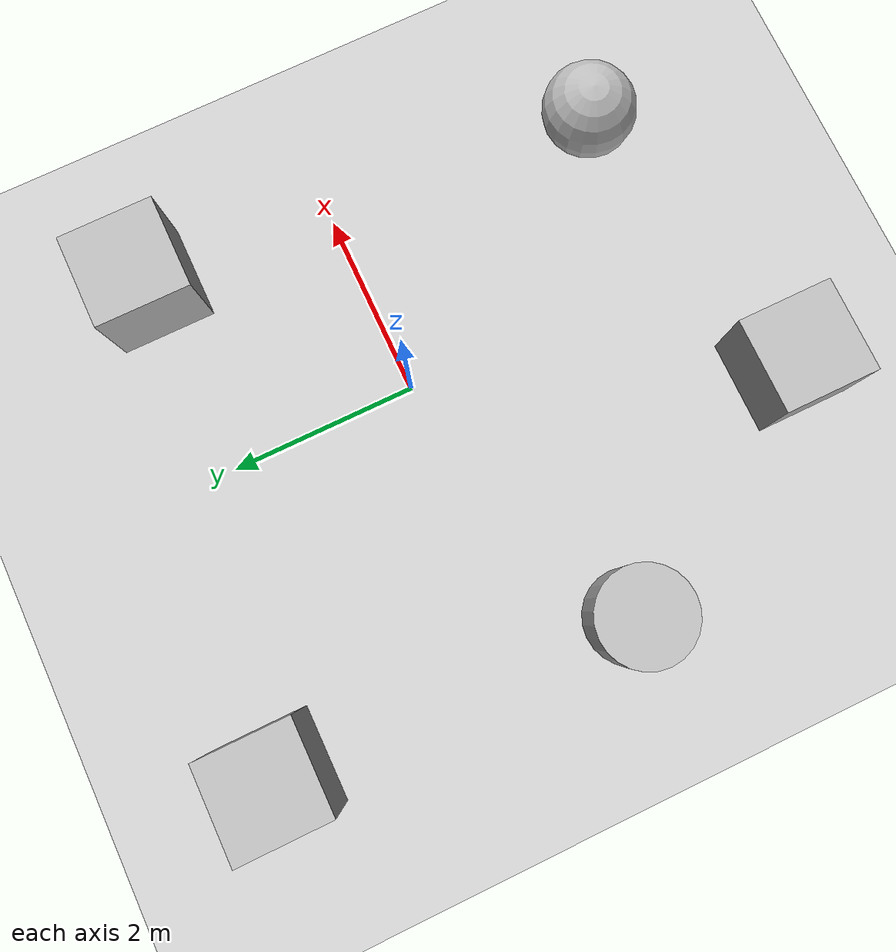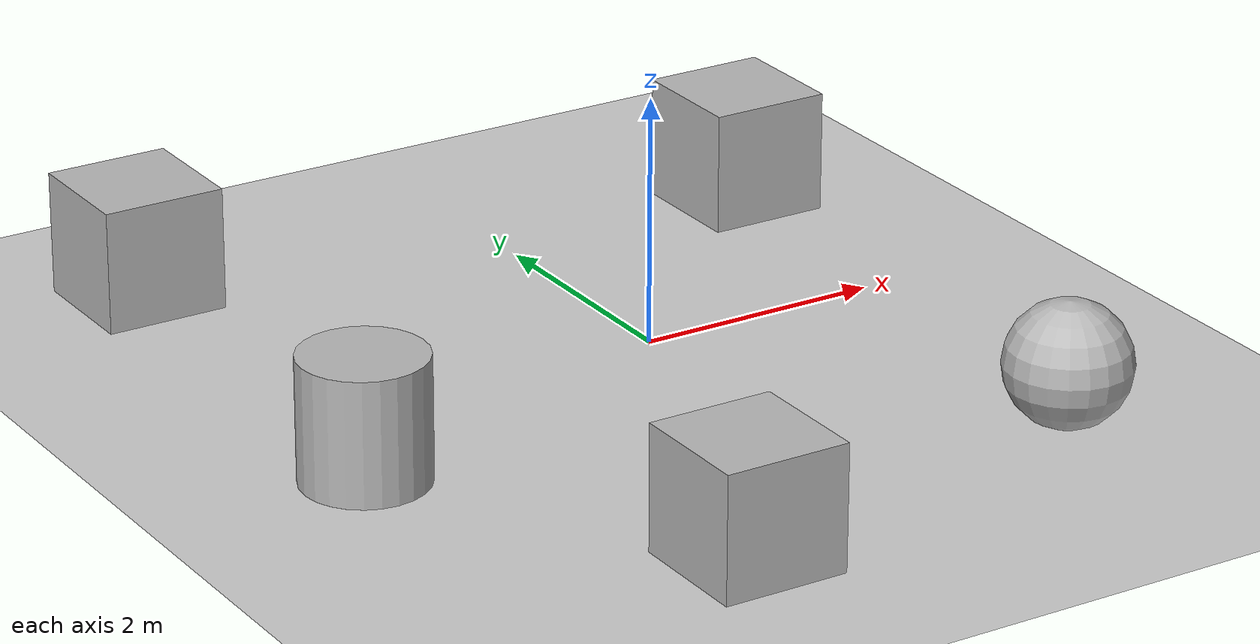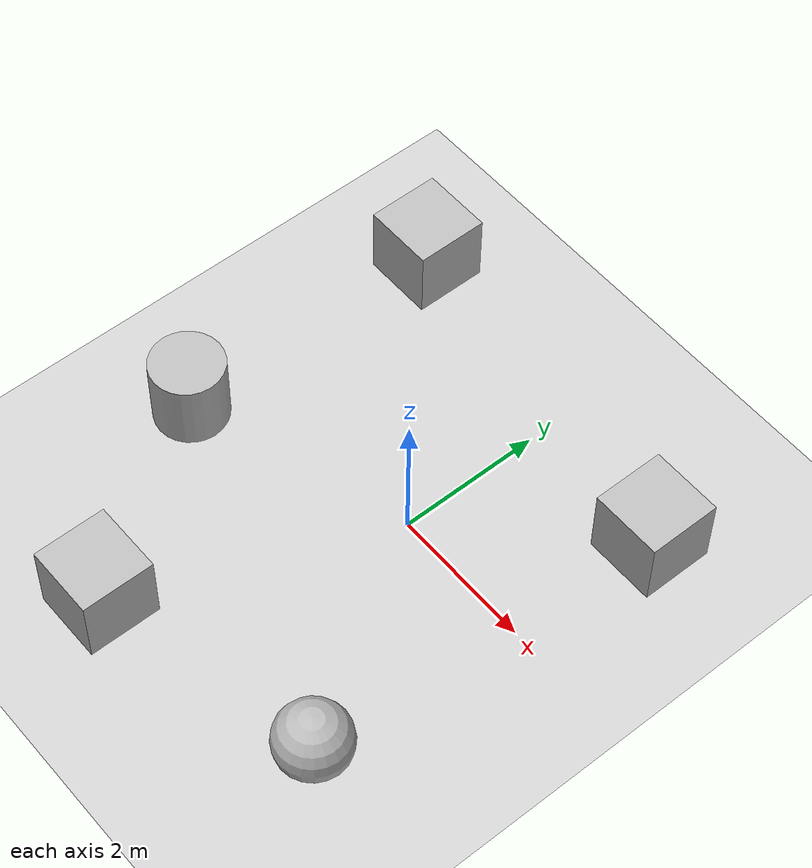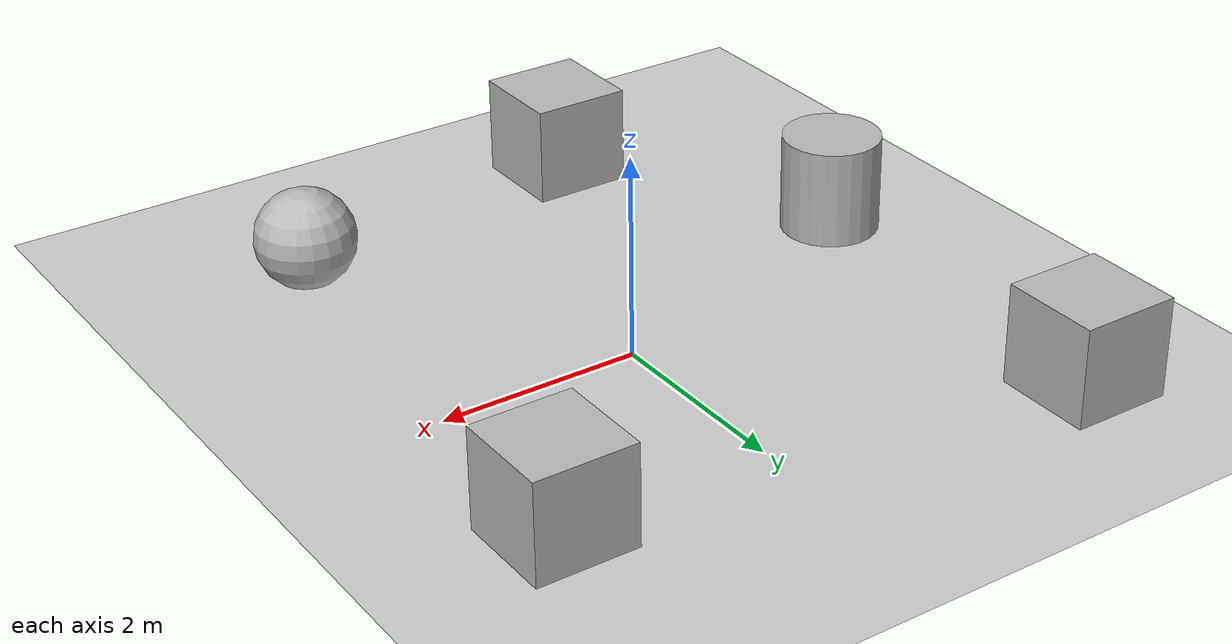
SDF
<?xml version="1.0" ?>
<sdf version="1.6">
  <world name="kohms_world">

  <!-- Plugins section cause we'll need those -->
    <physics name="1ms" type="ignored">
      <max_step_size>0.001</max_step_size>
      <real_time_factor>1.0</real_time_factor>
    </physics>
    <!-- Processes the NavSat sensor -->
    <plugin
      filename="ignition-gazebo-navsat-system"
      name="ignition::gazebo::systems::NavSat">
    </plugin>
    <plugin
      filename="ignition-gazebo-physics-system"
      name="ignition::gazebo::systems::Physics">
    </plugin>
    <plugin
      filename="ignition-gazebo-sensors-system"
      name="ignition::gazebo::systems::Sensors">
      <render_engine>ogre2</render_engine>
    </plugin>
    <plugin
      filename="ignition-gazebo-user-commands-system"
      name="ignition::gazebo::systems::UserCommands">
    </plugin>
    <plugin
      filename="ignition-gazebo-scene-broadcaster-system"
      name="ignition::gazebo::systems::SceneBroadcaster">
    </plugin>
    <plugin
      filename="ignition-gazebo-contact-system"
      name="ignition::gazebo::systems::Contact">
    </plugin>
    <plugin
        filename="libignition-gazebo-imu-system.so"
        name="ignition::gazebo::systems::Imu">
    </plugin>

       <!-- Set the coordinates for the world origin -->
    <spherical_coordinates>
      <surface_model>EARTH_WGS84</surface_model>
      <world_frame_orientation>ENU</world_frame_orientation>
      <latitude_deg>42.31900798506178</latitude_deg>
      <longitude_deg>-83.23283357729119 </longitude_deg>
      <elevation>0</elevation>
      <heading_deg>0</heading_deg>
    </spherical_coordinates>

  <!-- Define light source because I like seeing -->
    <light type="directional" name="sun">
      <cast_shadows>true</cast_shadows>
      <pose>0 0 10 0 0 0</pose>
      <diffuse>0.8 0.8 0.8 1</diffuse>
      <specular>0.2 0.2 0.2 1</specular>
      <attenuation>
        <range>1000</range>
        <constant>0.9</constant>
        <linear>0.01</linear>
        <quadratic>0.001</quadratic>
      </attenuation>
      <direction>-0.5 0.1 -0.9</direction>
    </light>

  <!-- Having ground would be nice -->
   <model name="ground_plane">
      <static>true</static>
      <link name="link">
        <collision name="collision">
          <geometry>
            <plane>
              <normal>0 0 1</normal>
              <size>100 100</size>
            </plane>
          </geometry>
        </collision>
        <visual name="visual">
          <geometry>
            <plane>
              <normal>0 0 1</normal>
              <size>100 100</size>
            </plane>
          </geometry>
          <material>
            <ambient>0.8 0.8 0.8 1</ambient>
            <diffuse>0.8 0.8 0.8 1</diffuse>
            <specular>0.8 0.8 0.8 1</specular>
          </material>
        </visual>
      </link>
    </model>

    <model name='box'>
      <pose>-2.97282 2.79743 0.5 0 -0 0</pose>
      <link name='box_link'>
        <inertial>
          <inertia>
            <ixx>0.167</ixx>
            <ixy>0</ixy>
            <ixz>0</ixz>
            <iyy>0.167</iyy>
            <iyz>0</iyz>
            <izz>0.167</izz>
          </inertia>
          <mass>1</mass>
        </inertial>
        <collision name='box_collision'>
          <geometry>
            <box>
              <size>1 1 1</size>
            </box>
          </geometry>
          <surface>
            <friction>
              <ode/>
            </friction>
            <bounce/>
            <contact/>
          </surface>
        </collision>
        <visual name='box_visual'>
          <geometry>
            <box>
              <size>1 1 1</size>
            </box>
          </geometry>
        </visual>
      </link>
    </model>
    <model name='sphere'>
      <pose>1.81183 -2.90783 0.5 0 -0 0</pose>
      <link name='sphere_link'>
        <inertial>
          <inertia>
            <ixx>0.1</ixx>
            <ixy>0</ixy>
            <ixz>0</ixz>
            <iyy>0.1</iyy>
            <iyz>0</iyz>
            <izz>0.1</izz>
          </inertia>
          <mass>1</mass>
        </inertial>
        <collision name='sphere_collision'>
          <geometry>
            <sphere>
              <radius>0.5</radius>
            </sphere>
          </geometry>
          <surface>
            <friction>
              <ode/>
            </friction>
            <bounce/>
            <contact/>
          </surface>
        </collision>
        <visual name='sphere_visual'>
          <geometry>
            <sphere>
              <radius>0.5</radius>
            </sphere>
          </geometry>
        </visual>
      </link>
    </model>
    <model name='box_0'>
      <pose>-1.45208 -3.57609 0.5 0 -0 0</pose>
      <link name='box_link'>
        <inertial>
          <inertia>
            <ixx>0.167</ixx>
            <ixy>0</ixy>
            <ixz>0</ixz>
            <iyy>0.167</iyy>
            <iyz>0</iyz>
            <izz>0.167</izz>
          </inertia>
          <mass>1</mass>
        </inertial>
        <collision name='box_collision'>
          <geometry>
            <box>
              <size>1 1 1</size>
            </box>
          </geometry>
          <surface>
            <friction>
              <ode/>
            </friction>
            <bounce/>
            <contact/>
          </surface>
        </collision>
        <visual name='box_visual'>
          <geometry>
            <box>
              <size>1 1 1</size>
            </box>
          </geometry>
        </visual>
      </link>
    </model>
    <model name='cylinder'>
      <pose>-3.07319 -1.01163 0.5 -0 -0 -0</pose>
      <link name='cylinder_link'>
        <inertial>
          <inertia>
            <ixx>0.146</ixx>
            <ixy>0</ixy>
            <ixz>0</ixz>
            <iyy>0.146</iyy>
            <iyz>0</iyz>
            <izz>0.125</izz>
          </inertia>
          <mass>1</mass>
        </inertial>
        <collision name='cylinder_collision'>
          <geometry>
            <cylinder>
              <radius>0.5</radius>
              <length>1</length>
            </cylinder>
          </geometry>
          <surface>
            <friction>
              <ode/>
            </friction>
            <bounce/>
            <contact/>
          </surface>
        </collision>
        <visual name='cylinder_visual'>
          <geometry>
            <cylinder>
              <radius>0.5</radius>
              <length>1</length>
            </cylinder>
          </geometry>
        </visual>
      </link>
    </model>
    <model name='box_1'>
      <pose>2.13351 2.05299 0.5 0 -0 0</pose>
      <link name='box_link'>
        <inertial>
          <inertia>
            <ixx>0.167</ixx>
            <ixy>0</ixy>
            <ixz>0</ixz>
            <iyy>0.167</iyy>
            <iyz>0</iyz>
            <izz>0.167</izz>
          </inertia>
          <mass>1</mass>
        </inertial>
        <collision name='box_collision'>
          <geometry>
            <box>
              <size>1 1 1</size>
            </box>
          </geometry>
          <surface>
            <friction>
              <ode/>
            </friction>
            <bounce/>
            <contact/>
          </surface>
        </collision>
        <visual name='box_visual'>
          <geometry>
            <box>
              <size>1 1 1</size>
            </box>
          </geometry>
        </visual>
      </link>
    </model>

  </world>
</sdf>
